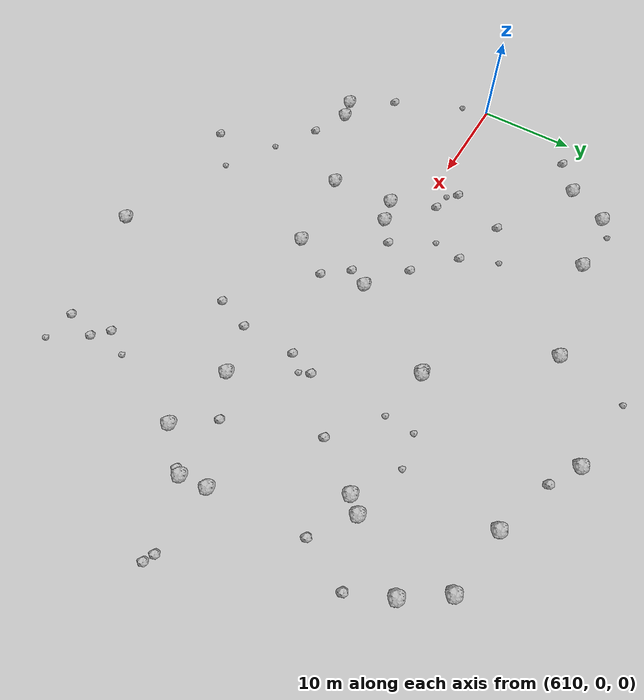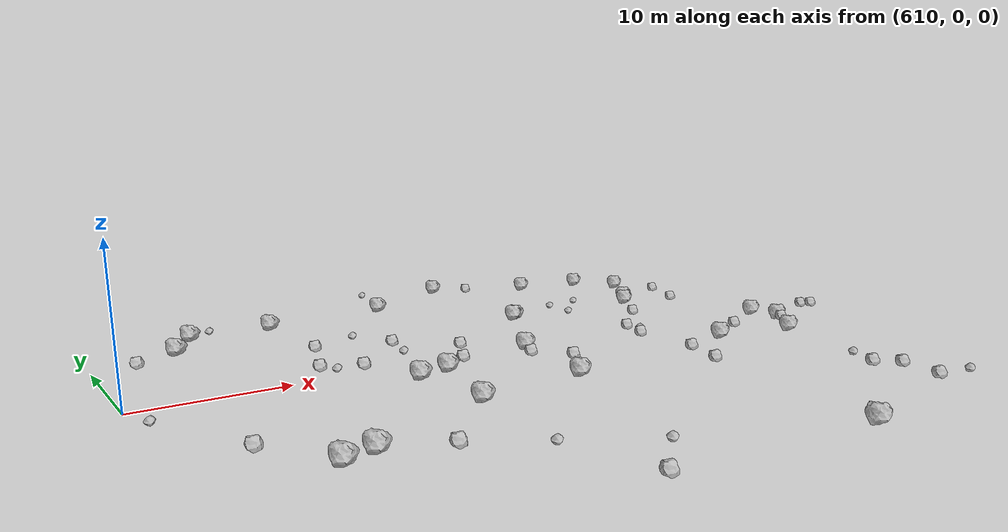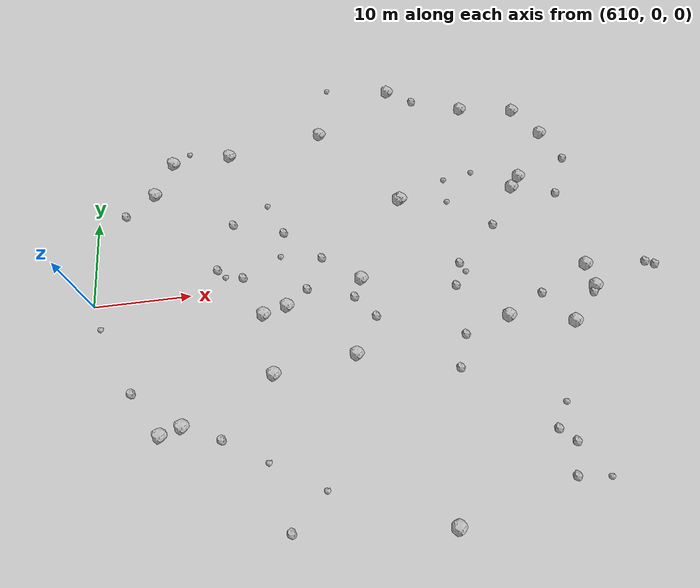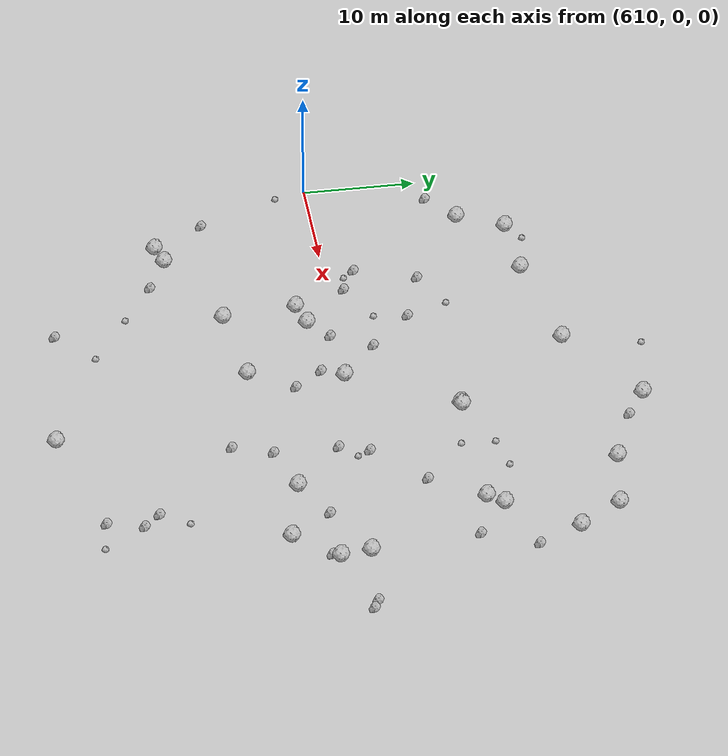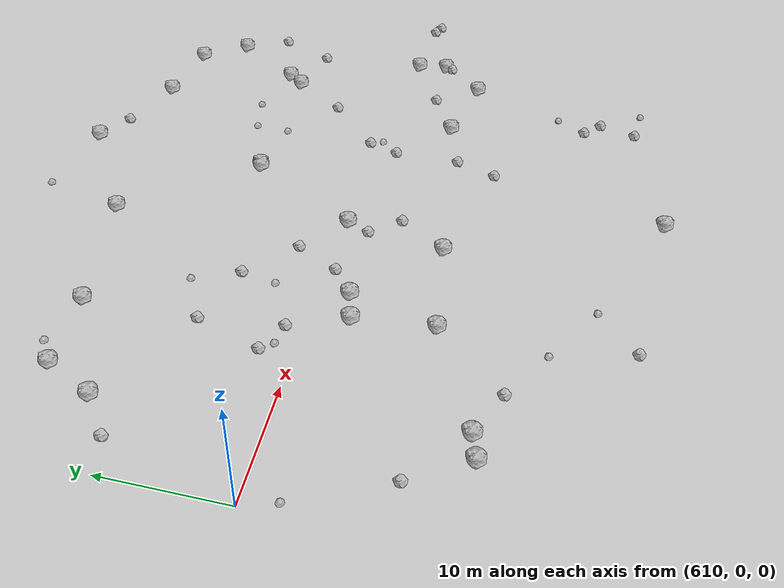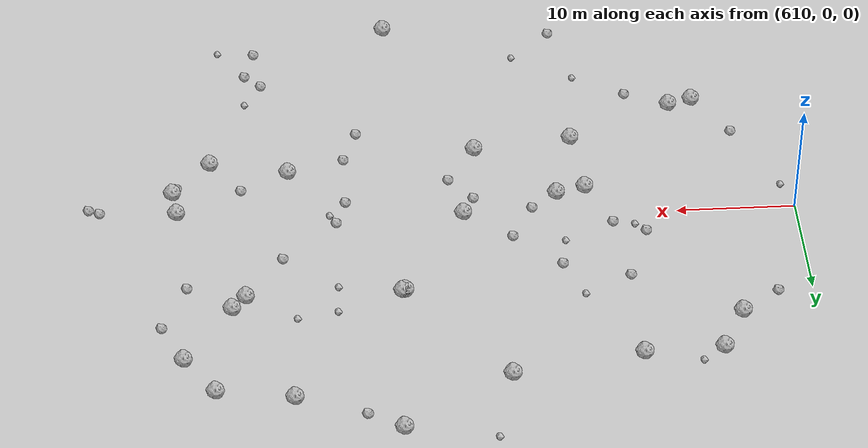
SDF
<sdf version="1.6">
 <world name="default">
  <include><uri>model://sun</uri></include>
  <model name="rock1_16_3">
   <include><uri>model://rock1</uri><pose>659.105581184813 -7.924807986549407 0.5 0 0 0</pose></include>
  </model>
  <model name="rock1_16_4">
   <include><uri>model://rock1</uri><pose>635.2346519040248 19.013934159225478 0.5 0 0 0</pose></include>
  </model>
  <model name="rock1_16_5">
   <include><uri>model://rock1</uri><pose>643.2403532714627 8.842279940844485 0.5 0 0 0</pose></include>
  </model>
  <model name="rock1_16_6">
   <include><uri>model://rock1</uri><pose>656.1804423720736 8.881246341424266 0.5 0 0 0</pose></include>
  </model>
  <model name="rock1_16_7">
   <include><uri>model://rock1</uri><pose>662.2473486906902 -4.295926108278959 0.5 0 0 0</pose></include>
  </model>
  <model name="rock1_16_8">
   <include><uri>model://rock1</uri><pose>617.1284402300666 -14.364900462704783 0.5 0 0 0</pose></include>
  </model>
  <model name="rock1_16_9">
   <include><uri>model://rock1</uri><pose>628.1461656867644 -9.672787883445785 0.5 0 0 0</pose></include>
  </model>
  <model name="rock1_16_10">
   <include><uri>model://rock1</uri><pose>637.9232634215614 -0.3940087683664437 0.5 0 0 0</pose></include>
  </model>
  <model name="rock1_16_11">
   <include><uri>model://rock1</uri><pose>619.1941603439672 -13.76113238863747 0.5 0 0 0</pose></include>
  </model>
  <model name="rock1_16_12">
   <include><uri>model://rock1</uri><pose>629.9487007661545 -2.5308354539173266 0.5 0 0 0</pose></include>
  </model>
  <model name="rock1_16_13">
   <include><uri>model://rock1</uri><pose>643.5962430349131 -25.878226916702687 0.5 0 0 0</pose></include>
  </model>
  <model name="rock1_16_14">
   <include><uri>model://rock1</uri><pose>661.1729471423556 15.978950950892369 0.5 0 0 0</pose></include>
  </model>
  <model name="rock1_16_15">
   <include><uri>model://rock1</uri><pose>652.4405211841115 20.696469283699216 0.5 0 0 0</pose></include>
  </model>
  <model name="rock1_16_16">
   <include><uri>model://rock1</uri><pose>636.5012078389864 -8.632584747661507 0.5 0 0 0</pose></include>
  </model>
  <model name="rock1_16_17">
   <include><uri>model://rock1</uri><pose>627.4875191020762 -3.1882610622829617 0.5 0 0 0</pose></include>
  </model>
  <model name="rock1_16_18">
   <include><uri>model://rock1</uri><pose>652.4955022202028 -6.482954041511576 0.5 0 0 0</pose></include>
  </model>
  <model name="rock1_16_19">
   <include><uri>model://rock1</uri><pose>661.8804494792905 -1.7026047743451826 0.5 0 0 0</pose></include>
  </model>
  <model name="rock1_16_20">
   <include><uri>model://rock1</uri><pose>643.460848251163 8.90765769347194 0.5 0 0 0</pose></include>
  </model>
  <model name="rock1_16_21">
   <include><uri>model://rock1</uri><pose>657.2945040303405 10.229084812345619 0.5 0 0 0</pose></include>
  </model>
  <model name="rock1_16_22">
   <include><uri>model://rock1</uri><pose>618.1770242029107 16.924976263556054 0.5 0 0 0</pose></include>
  </model>
  <model name="rock1_16_23">
   <include><uri>model://rock1</uri><pose>644.0555815803281 24.463572381632893 0.5 0 0 0</pose></include>
  </model>
  <model name="rock1_16_24">
   <include><uri>model://rock1</uri><pose>616.1594572997125 12.882444035966856 0.5 0 0 0</pose></include>
  </model>
  <model name="rock1_16_25">
   <include><uri>model://rock1</uri><pose>624.6075362396249 17.222171912796448 0.5 0 0 0</pose></include>
  </model>
  <model name="rock1_16_26">
   <include><uri>model://rock1</uri><pose>658.6510558308871 19.695020527949197 0.5 0 0 0</pose></include>
  </model>
  <model name="rock2_16_0">
   <include><uri>model://rock2</uri><pose>612.9510448202906 10.547488824363896 0.3 0 0 0</pose></include>
  </model>
  <model name="rock2_16_1">
   <include><uri>model://rock2</uri><pose>662.9504006471419 12.197138367499058 0.3 0 0 0</pose></include>
  </model>
  <model name="rock2_16_2">
   <include><uri>model://rock2</uri><pose>656.0385966467733 -19.789924597082617 0.3 0 0 0</pose></include>
  </model>
  <model name="rock2_16_3">
   <include><uri>model://rock2</uri><pose>648.5612597090394 0.1972181619811657 0.3 0 0 0</pose></include>
  </model>
  <model name="rock2_16_4">
   <include><uri>model://rock2</uri><pose>647.7199623277381 -2.357769834491801 0.3 0 0 0</pose></include>
  </model>
  <model name="rock2_16_5">
   <include><uri>model://rock2</uri><pose>633.9871455709952 2.687270693365761 0.3 0 0 0</pose></include>
  </model>
  <model name="rock2_16_6">
   <include><uri>model://rock2</uri><pose>630.1316826429993 6.288485789828215 0.3 0 0 0</pose></include>
  </model>
  <model name="rock2_16_7">
   <include><uri>model://rock2</uri><pose>646.5291369364897 -11.298439113124495 0.3 0 0 0</pose></include>
  </model>
  <model name="rock2_16_8">
   <include><uri>model://rock2</uri><pose>614.2186596121512 -9.860383715724648 0.3 0 0 0</pose></include>
  </model>
  <model name="rock2_16_9">
   <include><uri>model://rock2</uri><pose>655.21890936346 -22.882917668984092 0.3 0 0 0</pose></include>
  </model>
  <model name="rock2_16_10">
   <include><uri>model://rock2</uri><pose>622.8538523484726 2.5971176377254395 0.3 0 0 0</pose></include>
  </model>
  <model name="rock2_16_11">
   <include><uri>model://rock2</uri><pose>654.6281212226751 -18.40011420563706 0.3 0 0 0</pose></include>
  </model>
  <model name="rock2_16_12">
   <include><uri>model://rock2</uri><pose>624.6893351505864 7.978577257202971 0.3 0 0 0</pose></include>
  </model>
  <model name="rock2_16_13">
   <include><uri>model://rock2</uri><pose>660.9502628615846 7.596617388142732 0.3 0 0 0</pose></include>
  </model>
  <model name="rock2_16_14">
   <include><uri>model://rock2</uri><pose>653.0860830209754 4.41895519573238 0.3 0 0 0</pose></include>
  </model>
  <model name="rock2_16_15">
   <include><uri>model://rock2</uri><pose>638.9392716121207 -4.758096649560024 0.3 0 0 0</pose></include>
  </model>
  <model name="rock2_16_16">
   <include><uri>model://rock2</uri><pose>656.4679830505912 -4.363878967667862 0.3 0 0 0</pose></include>
  </model>
  <model name="rock2_16_17">
   <include><uri>model://rock2</uri><pose>669.2182533440163 -2.5498000016614206 0.3 0 0 0</pose></include>
  </model>
  <model name="rock2_16_18">
   <include><uri>model://rock2</uri><pose>625.5131288102443 1.3373820646546264 0.3 0 0 0</pose></include>
  </model>
  <model name="rock2_16_19">
   <include><uri>model://rock2</uri><pose>636.9622195232868 -2.3078949408430702 0.3 0 0 0</pose></include>
  </model>
  <model name="rock2_16_20">
   <include><uri>model://rock2</uri><pose>632.1209475901311 -0.8041586586556981 0.3 0 0 0</pose></include>
  </model>
  <model name="rock2_16_21">
   <include><uri>model://rock2</uri><pose>628.8179005282897 -24.47774837966089 0.3 0 0 0</pose></include>
  </model>
  <model name="rock2_16_22">
   <include><uri>model://rock2</uri><pose>646.8176058229276 22.761686945342376 0.3 0 0 0</pose></include>
  </model>
  <model name="rock2_16_23">
   <include><uri>model://rock2</uri><pose>668.2926463933769 -2.114468300141951 0.3 0 0 0</pose></include>
  </model>
  <model name="rock2_16_24">
   <include><uri>model://rock2</uri><pose>661.8907437305497 -4.938078773164449 0.3 0 0 0</pose></include>
  </model>
  <model name="rock2_16_25">
   <include><uri>model://rock2</uri><pose>647.7077604861183 -7.892829998329091 0.3 0 0 0</pose></include>
  </model>
  <model name="rock2_16_26">
   <include><uri>model://rock2</uri><pose>622.8577441738416 -15.450111844471468 0.3 0 0 0</pose></include>
  </model>
  <model name="rock3_16_0">
   <include><uri>model://rock3</uri><pose>623.6719574734866 1.6039182602691326 0.2 0 0 0</pose></include>
  </model>
  <model name="rock3_16_1">
   <include><uri>model://rock3</uri><pose>649.0439441719857 -0.889105658502281 0.2 0 0 0</pose></include>
  </model>
  <model name="rock3_16_2">
   <include><uri>model://rock3</uri><pose>619.9299231514019 18.18620116769337 0.2 0 0 0</pose></include>
  </model>
  <model name="rock3_16_3">
   <include><uri>model://rock3</uri><pose>627.1454049714265 -18.130361324074016 0.2 0 0 0</pose></include>
  </model>
  <model name="rock3_16_4">
   <include><uri>model://rock3</uri><pose>629.6100445565606 3.3597140942980346 0.2 0 0 0</pose></include>
  </model>
  <model name="rock3_16_5">
   <include><uri>model://rock3</uri><pose>636.7276745775314 25.7391270479961 0.2 0 0 0</pose></include>
  </model>
  <model name="rock3_16_6">
   <include><uri>model://rock3</uri><pose>610.861039237331 -2.7182382529569047 0.2 0 0 0</pose></include>
  </model>
  <model name="rock3_16_7">
   <include><uri>model://rock3</uri><pose>658.3560187854521 -23.343376672096973 0.2 0 0 0</pose></include>
  </model>
  <model name="rock3_16_8">
   <include><uri>model://rock3</uri><pose>656.0284189643621 -15.981197660449899 0.2 0 0 0</pose></include>
  </model>
  <model name="rock3_16_9">
   <include><uri>model://rock3</uri><pose>628.5504288278792 9.92601491966198 0.2 0 0 0</pose></include>
  </model>
  <model name="rock3_16_10">
   <include><uri>model://rock3</uri><pose>648.6991720013638 10.910326470277965 0.2 0 0 0</pose></include>
  </model>
  <model name="rock3_16_11">
   <include><uri>model://rock3</uri><pose>651.9974313727216 11.550098009258349 0.2 0 0 0</pose></include>
  </model>
  <model name="rock3_16_12">
   <include><uri>model://rock3</uri><pose>632.2818691815669 -21.285852407130175 0.2 0 0 0</pose></include>
  </model>
  <model name="rock3_16_13">
   <include><uri>model://rock3</uri><pose>648.5775194273562 7.988135764206447 0.2 0 0 0</pose></include>
  </model>
 </world>
</sdf>
